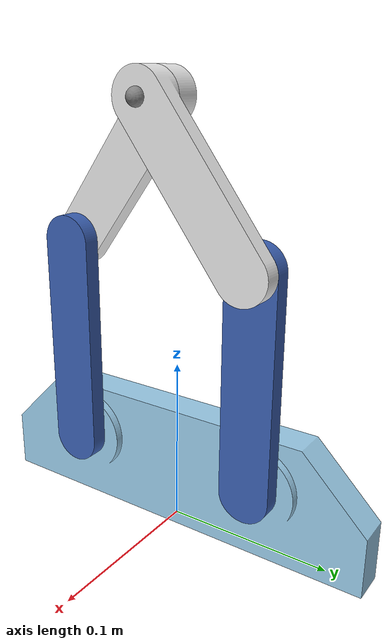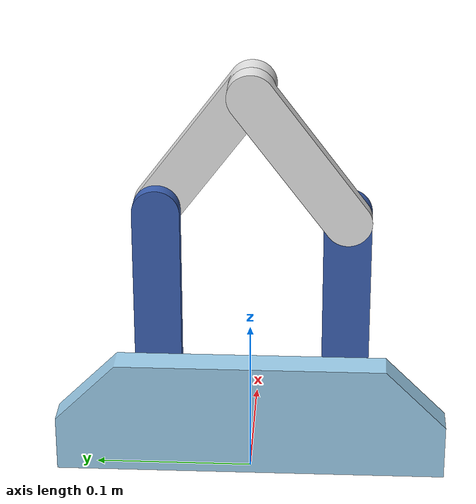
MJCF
<?xml version="1.0" ?>
<!-- Generated using onshape-to-robot -->
<!-- OnShape document_id: 04b05c47de7576f35c0e99b3 -->
<mujoco model="onshape">
    <compiler angle="radian" meshdir="." autolimits="true"/>
    <option noslip_iterations="1"/>
    <default>
        <joint frictionloss="0.1" armature="0.005"/>
        <position kp="50" kv="5"/>
        <default class="visual">
            <geom type="mesh" contype="0" conaffinity="0" group="2"/>
        </default>
        <default class="collision">
            <geom group="3"/>
        </default>
    </default>
    <worldbody>
        <!-- Link base -->
        <body name="base" pos="0 0 0" quat="1 0 0 0">
            <inertial pos="0.00067387932128801404652 0 0.035858035995898429604" mass="1.0125175723561230523" fullinertia="0.0050063948833493346 0.00047974770084012235884 0.0046068750516161591224 -4.4318894654038958393e-19 -6.2376960104677783286e-06 7.6774970815902717099e-19"/>
            <!-- Part base -->
            <!-- Mesh base -->
            <geom type="mesh" class="visual" pos="-0.010000000000000000208 -0.125 1.3877787807814456755e-17" quat="0.49999999999999994449 0.49999999999999983347 0.50000000000000011102 0.49999999999999988898" mesh="base" material="base_material"/>
            <!-- Mesh base -->
            <geom type="mesh" class="collision" pos="-0.010000000000000000208 -0.125 1.3877787807814456755e-17" quat="0.49999999999999994449 0.49999999999999983347 0.50000000000000011102 0.49999999999999988898" mesh="base" material="base_material"/>
            <!-- Link branch1 -->
            <body name="branch1" pos="0.014999999999999995975 -0.059999999999999970024 0.044999999999999991396" quat="0.34641016151377557186 -0.61644140029689742377 -0.3464101615137752388 0.61644140029689764582">
                <!-- Joint from base to branch1 -->
                <joint name="motor1" type="hinge"/>
                <inertial pos="-0.032500000000000146827 -0.053385391260156685178 -0.0050000000000000009714" mass="0.12390066204820480988" fullinertia="0.00017070305209466315956 6.953149454569647705e-05 0.00023816953560622293679 -9.7859346890542020275e-05 -1.0161215258064404808e-36 -2.1345602358676737123e-36"/>
                <!-- Part branch1 -->
                <!-- Mesh branch1 -->
                <geom type="mesh" class="visual" pos="-0.065000000000000016098 0.045000000000000019151 0.025000000000000001388" quat="0 1 0 0" mesh="branch1" material="branch1_material"/>
                <!-- Mesh branch1 -->
                <geom type="mesh" class="collision" pos="-0.065000000000000016098 0.045000000000000019151 0.025000000000000001388" quat="0 1 0 0" mesh="branch1" material="branch1_material"/>
                <!-- Link branch2 -->
                <body name="branch2" pos="-0.065000000000000210387 -0.1067707825203129679 0" quat="5.1884078698655499953e-17 0.95370656975113077269 -0.30073872183929267754 4.4043164517792630948e-17">
                    <!-- Joint from branch1 to branch2 -->
                    <joint name="passive1" type="hinge"/>
                    <inertial pos="0.035328974076700020435 0.041304147573957609996 -0.0043471598284538538748" mass="0.11287599307230634926" fullinertia="9.4366527777012561133e-05 7.1533964619042975422e-05 0.00016313290830430931199 -7.2763288808187767871e-05 -2.186457386408537913e-06 -2.5562519408665347491e-06"/>
                    <!-- Part branch2 -->
                    <!-- Mesh branch2 -->
                    <geom type="mesh" class="visual" pos="1.3877787807814456755e-17 -0.15177078252031314665 -0.025000000000000001388" quat="0.99999999999999988898 0 -6.363052265890746543e-19 -7.2163082677134576043e-33" mesh="branch2" material="branch2_material"/>
                    <!-- Mesh branch2 -->
                    <geom type="mesh" class="collision" pos="1.3877787807814456755e-17 -0.15177078252031314665 -0.025000000000000001388" quat="0.99999999999999988898 0 -6.363052265890746543e-19 -7.2163082677134576043e-33" mesh="branch2" material="branch2_material"/>
                    <!-- Frame closing_effector_1 (dummy link + fixed joint) -->
                    <site name="closing_effector_1" pos="0.065000000000000016098 0.075993420767853286923 0.0050000000000000027062" quat="0.99999999999999988898 0 -6.363052265890746543e-19 -7.2163082677134576043e-33"/>
                </body>
            </body>
            <!-- Link branch1_2 -->
            <body name="branch1_2" pos="0.014999999999999999445 0.059999999999999983902 0.044999999999999991396" quat="0.34641016151377529431 0.61644140029689775684 -0.34641016151377512777 -0.61644140029689753479">
                <!-- Joint from base to branch1_2 -->
                <joint name="motor2" type="hinge"/>
                <inertial pos="-0.032500000000000139888 0.053385391260156726811 -0.0050000000000000079103" mass="0.12390066204820480988" fullinertia="0.00017070305209466321377 6.9531494545696504155e-05 0.00023816953560622293679 9.785934689054204738e-05 2.7465013975902173369e-36 1.7757138151657554891e-36"/>
                <!-- Part branch1_2 -->
                <!-- Mesh branch1_2 -->
                <geom type="mesh" class="visual" pos="-0.06500000000000000222 -0.045000000000000019151 -0.03500000000000001027" quat="1 0 0 2.7186417092828613266e-32" mesh="branch1" material="branch1_material"/>
                <!-- Mesh branch1_2 -->
                <geom type="mesh" class="collision" pos="-0.06500000000000000222 -0.045000000000000019151 -0.03500000000000001027" quat="1 0 0 2.7186417092828613266e-32" mesh="branch1" material="branch1_material"/>
                <!-- Link branch2_2 -->
                <body name="branch2_2" pos="-0.065000000000000224265 0.10677078252031299566 -0.010000000000000003678" quat="0.95370656975113243803 -1.2951070295457336077e-16 -0 0.30073872183928768154">
                    <!-- Joint from branch1_2 to branch2_2 -->
                    <joint name="passive2" type="hinge"/>
                    <inertial pos="0.035328974076700013496 0.041304147573957609996 -0.0043471598284538573442" mass="0.11287599307230634926" fullinertia="9.4366527777012534028e-05 7.1533964619042975422e-05 0.00016313290830430931199 -7.2763288808187754318e-05 -2.1864573864085374895e-06 -2.5562519408665347491e-06"/>
                    <!-- Part branch2_2 -->
                    <!-- Mesh branch2_2 -->
                    <geom type="mesh" class="visual" pos="6.9388939039072283776e-18 -0.15177078252031314665 -0.025000000000000004857" quat="0.99999999999999988898 0 9.2670333445976679427e-18 -1.1102230246251558009e-16" mesh="branch2" material="branch2_material"/>
                    <!-- Mesh branch2_2 -->
                    <geom type="mesh" class="collision" pos="6.9388939039072283776e-18 -0.15177078252031314665 -0.025000000000000004857" quat="0.99999999999999988898 0 9.2670333445976679427e-18 -1.1102230246251558009e-16" mesh="branch2" material="branch2_material"/>
                    <!-- Frame closing_effector_2 (dummy link + fixed joint) -->
                    <site name="closing_effector_2" pos="0.06500000000000000222 0.075993420767853286923 0.0050000000000000009714" quat="5.1834876587393831344e-33 -0.70710678118654746172 -0.70710678118654746172 5.6856505953161280148e-33"/>
                    <!-- Frame effector (dummy link + fixed joint) -->
                    <site name="effector" pos="0.06500000000000000222 0.075993420767853342435 -0.0099999999999999984734" quat="5.4793627067794525391e-16 -1 -1.9143652909598556222e-17 -4.6487172950315413482e-17"/>
                </body>
            </body>
        </body>
    </worldbody>
    <asset>
        <mesh file="branch1.stl"/>
        <mesh file="base.stl"/>
        <mesh file="branch2.stl"/>
        <material name="base_material" rgba="0.61568627450980395466 0.81176470588235294379 0.92941176470588238168 1"/>
        <material name="branch1_material" rgba="0.2313725490196078538 0.38039215686274507888 0.7058823529411765163 1"/>
        <material name="branch2_material" rgba="0.91764705882352937127 0.91764705882352937127 0.91764705882352937127 1"/>
    </asset>
    <actuator>
        <position name="motor1" joint="motor1"/>
        <position name="motor2" joint="motor2"/>
    </actuator>
    <equality>
        <connect site1="closing_effector_1" site2="closing_effector_2"/>
    </equality>
</mujoco>
